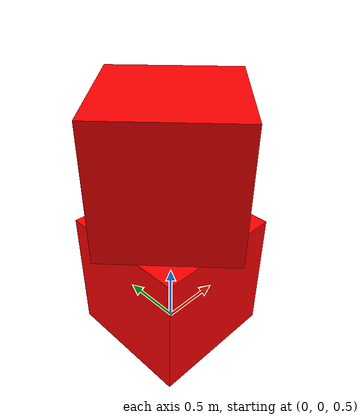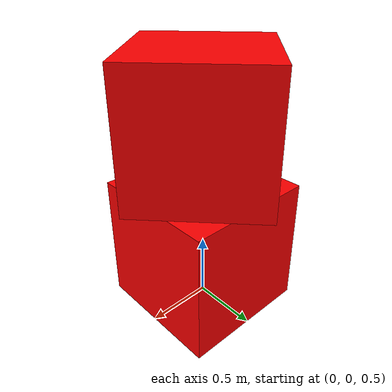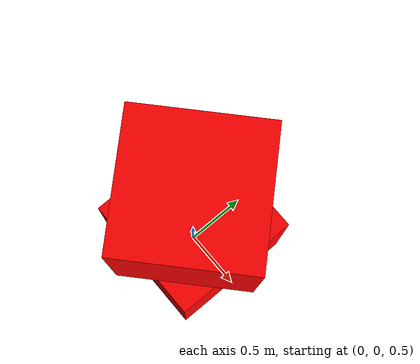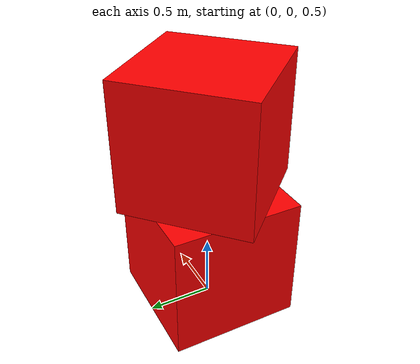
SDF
<?xml version="1.0" ?>
<sdf version="1.7">
    <world name="test_world">
        <physics name="3ms" type="ignored">
            <max_step_size>0.001</max_step_size>
            <real_time_factor>1.0</real_time_factor>
        </physics>
        <plugin
            filename="ignition-gazebo-physics-system"
            name="ignition::gazebo::systems::Physics">
        </plugin>
        <plugin
      	    filename="ignition-gazebo-sensors-system"
      	    name="ignition::gazebo::systems::Sensors">
    	</plugin>
        <plugin
            filename="ignition-gazebo-user-commands-system"
            name="ignition::gazebo::systems::UserCommands">
        </plugin>
        <plugin
          filename="ignition-gazebo-imu-system"
          name="ignition::gazebo::systems::Imu">
        </plugin>
        <plugin
            filename="ignition-gazebo-scene-broadcaster-system"
            name="ignition::gazebo::systems::SceneBroadcaster">
        </plugin>

    <model name="test_model" canonical_link='first_link'>
        <pose relative_to='world'>0 0 0 0 0 0</pose>
        <link name="first_link">
            <pose relative_to="__model__">0 0 1 0 0 0</pose>
            <inertial>
            <mass>1</mass>
            <inertia>
                <ixx>1</ixx>
                <iyy>1</iyy>
                <izz>1</izz>
                <ixy>0</ixy>
                <ixz>0</ixz>
                <iyz>0</iyz>
            </inertia>
            </inertial>
            <visual name="visual">
            <geometry>
                <box>
                    <size>1 1 1</size>
                </box>
                </geometry>
            <material>
                <ambient>1.0 0.0 0.0 0.9</ambient>
                <diffuse>1.0 0.0 0.0 0.9</diffuse>
                <specular>1.0 0.0 0.0 0.9</specular>
            </material>
            </visual>
            <collision name="collision">
            <geometry>
                <box>
                    <size>1 1 1</size>
                </box>
            </geometry>
            </collision>
        </link>

        <link name="second_link">
            <pose relative_to="__model__">0 0 2 0 0 0.75</pose>
            <inertial>
            <mass>1</mass>
            <inertia>
                <ixx>1</ixx>
                <iyy>1</iyy>
                <izz>1</izz>
                <ixy>0</ixy>
                <ixz>0</ixz>
                <iyz>0</iyz>
            </inertia>
            </inertial>
            <visual name="visual">
            <geometry>
                <box>
                    <size>1 1 1</size>
                </box>
                </geometry>
            <material>
                <ambient>1.0 0.0 0.0 0.9</ambient>
                <diffuse>1.0 0.0 0.0 0.9</diffuse>
                <specular>1.0 0.0 0.0 0.9</specular>
            </material>
            </visual>
            <collision name="collision">
            <geometry>
                <box>
                    <size>1 1 1</size>
                </box>
            </geometry>
            </collision>
        </link>
    </model>
</world>
</sdf>
